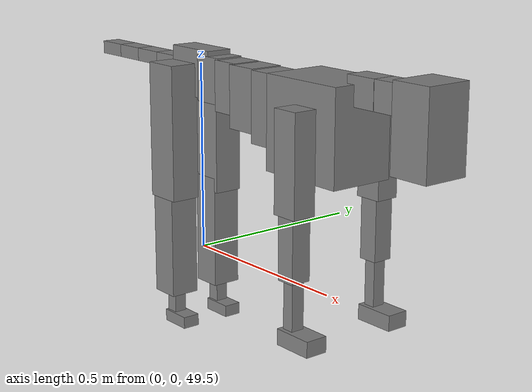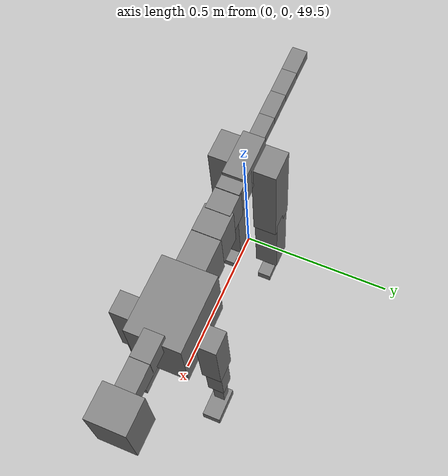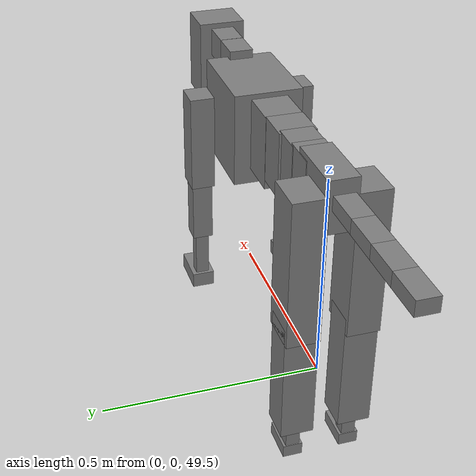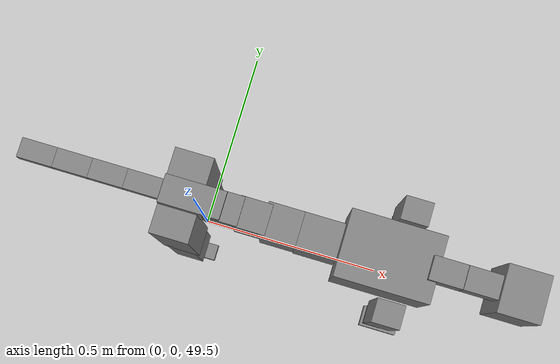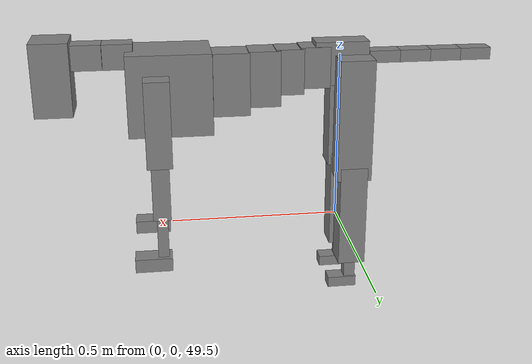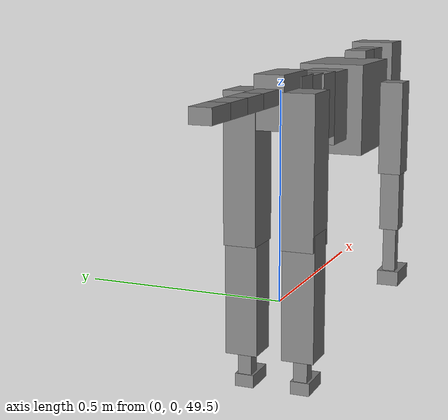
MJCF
<mujoco model="dog">

    <default>
        <joint armature="0.02" stiffness="1" damping="0.2" limited="true"/>
        <geom condim="3" friction="1 0.05 0.05" margin="0.01"/>
        <motor ctrllimited="true" ctrlrange="-1.0 1.0" forcelimited="true" gear="50"/>
    </default>

    <compiler inertiafromgeom="true" angle="radian"/>

    <option timestep="0.016" iterations="50" tolerance="1e-10" solver="Newton" jacobian="dense" cone="pyramidal"/>

    <size nconmax="20000" njmax="60000" nstack="5000000"/>
    <visual>
        <map force="0.1" zfar="30"/>
        <rgba haze="0.15 0.25 0.35 1"/>
        <quality shadowsize="2048"/>
        <global offwidth="800" offheight="800"/>
    </visual>

    <asset>
        <texture type="skybox" builtin="gradient" rgb1="0.3 0.5 0.7" rgb2="0 0 0" width="512" height="512"/>
        <texture name="texplane" type="2d" builtin="checker" rgb1=".2 .3 .4" rgb2=".1 0.15 0.2" width="512" height="512"
                 mark="cross" markrgb=".8 .8 .8"/>
        <texture name="texgeom" type="cube" builtin="flat" mark="cross" width="127" height="1278" rgb1="0.8 0.6 0.4"
                 rgb2="0.8 0.6 0.4" markrgb="1 1 1" random="0.01"/>

        <material name="matplane" reflectance="0.3" texture="texplane" texrepeat="1 1" texuniform="true"/>
        <material name="matgeom" texture="texgeom" texuniform="true" rgba="0.8 0.6 .4 1"/>
    </asset>

    <worldbody>
        <geom name="floor" pos="0 0 0" size="0 0 .25" type="plane" material="matplane" condim="3"/>

        <light directional="false" diffuse=".2 .2 .2" specular="0 0 0" pos="0 0 5" dir="0 0 -1" castshadow="false"/>
        <light mode="targetbodycom" target="torso" directional="false" diffuse=".8 .8 .8" specular="0.3 0.3 0.3"
               pos="0 0 4.0" dir="0 0 -1"/>

        <body name="root" pos="0 0 50">
            <freejoint name="root_1"/>
            <geom type="box" pos="0 0 -0.02" size="0.0774  0.0358  0.063" density="2030"/>

            <body name="spine1" pos="0.054 0 0">
                <joint name="spine1_y" axis="0 1 0" range="0 0.7" limited="true"/>
                <geom type="box" pos="0.02375 0 -0.03" size="0.04375  0.0375  0.05985" density="2030"/>

                <body name="spine2" pos="0.0612 0 0">
                    <joint name="spine2_y" axis="0 1 0" range="-0.15 0.15" limited="true"/>
                    <geom type="box" pos="0.03555  0  -0.04" size="0.04055  0.039  0.06615" density="2030"/>

                    <body name="spine3" pos="0.0730 0 0">
                        <joint name="spine3_y" axis="0 1 0" range="-0.15 0.15" limited="true"/>
                        <geom type="box" pos="0.03555  0  -0.057" size="0.04555  0.0445  0.081" density="2030"/>

                        <body name="spine4" pos="0.0780 0 0">
                            <joint name="spine4_y" axis="0 1 0" range="-0.15 0.15" limited="true"/>
                            <geom type="box" pos="0.05265  0  -0.07" size="0.05265  0.045  0.09135" density="2030"/>

                            <body name="torso" pos="0.1082 0 0">
                                <joint name="torso_y" axis="0 1 0" range="-0.15 0.15" limited="true"/>
                                <geom type="box" pos="0.11925  0  -0.085" size="0.11925  0.085  0.11745"
                                      density="2030"/>

                                <body name="neck1" pos="0.2160  0   0.0180">
                                    <joint name="neck1_y" axis="0 1 0" range="-1.2  -1" limited="true"/>
                                    <geom type="box" pos="0.0423  0  0" size="0.0423  0.03  0.036" density="2325"/>

                                    <body name="neck2" pos="0.0853  0  0">
                                        <joint name="neck2_y" axis="0 1 0" range="0.1  0" limited="true"/>
                                        <geom type="box" pos="0.0423  0  0" size="0.0423  0.03  0.036" density="2325"/>

                                        <body name="head" pos="0.0853  0  0">
                                            <joint name="head_y" axis="0 1 0" range="-0.3  -0.2" limited="true"/>
                                            <geom type="box" pos="0.0531  0  -0.055" size="0.0531  0.06  0.1044"
                                                  density="4030"/>

                                        </body>
                                    </body>
                                </body>

                                <body name="front_shoulder" pos="0.156  0   -0.0480">
                                    <joint name="front_shoulder_y" axis="0 1 0" range="-1 1.5" limited="true"/>
                                    <geom type="box" pos="0 0.13 -0.0972" size="0.0356  0.0304  0.1238" density="1158"/>
                                    <geom type="box" pos="0 -0.13 -0.0972" size="0.0356  0.0304  0.1238"
                                          density="1158"/>

                                    <body name="front_elbow" pos="0  0  -0.1944">
                                        <joint name="front_elbow_y" axis="0 1 0" range="-2 0" limited="true"/>
                                        <geom type="box" pos="0 0.13 -0.0913" size="0.0253  0.0259  0.0913"
                                              density="1081"/>
                                        <geom type="box" pos="0 -0.13 -0.0913" size="0.0253  0.0259  0.0913"
                                              density="1081"/>

                                        <body name="front_wrist" pos="0  0  -0.1826">
                                            <joint name="front_wrist_y" axis="0 1 0" range="-0.2 0" limited="true"/>
                                            <geom type="box" pos="0 0.13 -0.0667" size="0.0155  0.0173  0.0798"
                                                  density="1664"/>
                                            <geom type="box" pos="0 -0.13 -0.0667" size="0.0155  0.0173  0.0798"
                                                  density="1664"/>

                                            <body name="front_finger_end" pos="0  0  -0.1334">
                                                <joint name="front_finger_y" axis="0 1 0" range="-0.4 1"
                                                       limited="true"/>
                                                <geom type="box" pos="0.0290  0.13  -0.0049"
                                                      size="0.0532  0.0290  0.0199" density="1515"/>
                                                <geom type="box" pos="0.0290  -0.13  -0.0049"
                                                      size="0.0532  0.0290  0.0199" density="1515"/>

                                            </body>

                                        </body>
                                    </body>
                                </body>

                            </body>
                        </body>
                    </body>
                </body>
            </body>

            <body name="back_hip" pos="-0.03 0 -0.018">
                <joint name="back_hip_y" axis="0 1 0" range="-1.5 0.3" limited="true"/>
                <geom type="box" pos="0 0.07 -0.1568" size="0.0502  0.0394  0.1796" density="1154"/>
                <geom type="box" pos="0 -0.07 -0.1568" size="0.0502  0.0394  0.1796" density="1154"/>

                <body name="back_knee" pos="0  0  -0.3136">
                    <joint name="back_knee_y" axis="0 1 0" range="0 2.8" limited="true"/>
                    <geom type="box" pos="0 0.07 -0.1366" size="0.0400  0.0394  0.1521" density="1227"/>
                    <geom type="box" pos="0 -0.07 -0.1366" size="0.0400  0.0394  0.1521" density="1227"/>

                    <body name="back_ankle" pos="0  0  -0.2732">
                        <joint name="back_ankle_y" axis="0 1 0" range="-2.2 0" limited="true"/>
                        <geom type="box" pos="0 0.07 -0.0432" size="0.0169  0.0169  0.0545" density="1284"/>
                        <geom type="box" pos="0 -0.07 -0.0432" size="0.0169  0.0169  0.0545" density="1284"/>

                        <body name="back_toe_end" pos="0  0  -0.0865">
                            <joint name="back_toe_y" axis="0 1 0" range="-0.4 1" limited="true"/>
                            <geom type="box" pos="0.0233  0.07  -0.0007" size="0.0427  0.0233  0.0157" density="1515"/>
                            <geom type="box" pos="0.0233  -0.07  -0.0007" size="0.0427  0.0233  0.0157" density="1515"/>

                        </body>
                    </body>
                </body>
            </body>

            <body name="tail1" pos="-0.074 0 -0.006">
                <joint name="tail1_y" axis="0 1 0" range="-0.2 0.2" limited="true"/>
                <geom type="box" pos="-0.0536  0  0" size="0.045  0.025  0.0175" density="1587"/>

                <body name="tail2" pos="-0.09 0 0">
                    <joint name="tail2_y" axis="0 1 0" range="-0.2 0.2" limited="true"/>
                    <geom type="box" pos="-0.0536  0  0" size="0.045  0.025  0.0175" density="1587"/>

                    <body name="tail3" pos="-0.09 0 0">
                        <joint name="tail3_y" axis="0 1 0" range="-0.2 0.2" limited="true"/>
                        <geom type="box" pos="-0.0536  0  0" size="0.045  0.025  0.0175" density="1587"/>

                        <body name="tail4" pos="-0.09 0 0">
                            <joint name="tail4_y" axis="0 1 0" range="-0.2 0.2" limited="true"/>
                            <geom type="box" pos="-0.0536  0  0" size="0.045  0.025  0.0175" density="1587"/>

                        </body>
                    </body>
                </body>
            </body>
        </body>
    </worldbody>

    <actuator>
        <motor joint="spine1_y" forcerange="-150 150     "/>
        <motor joint="spine2_y" forcerange="-150 150     "/>
        <motor joint="spine3_y" forcerange="-150 150     "/>
        <motor joint="spine4_y" forcerange="-150 150     "/>
        <motor joint="torso_y" forcerange="-150 150     "/>
        <motor joint="neck1_y" forcerange="-100 100       "/>
        <motor joint="neck2_y" forcerange="-100 100       "/>
        <motor joint="head_y" forcerange="-150 150       "/>
        <motor joint="front_shoulder_y" forcerange="-135.63 166.94"/>
        <motor joint="front_elbow_y" forcerange="-171.38 117.06"/>
        <motor joint="front_wrist_y" forcerange="-50.60 87.62"/>
        <motor joint="front_finger_y" forcerange="-81.17 33.61"/>
        <motor joint="back_hip_y" forcerange="-325.07 399.79"/>
        <motor joint="back_knee_y" forcerange="-381.66 391.52"/>
        <motor joint="back_angle_y" forcerange="-102.06 67.90"/>
        <motor joint="back_toe_y" forcerange="-63.17 43.36"/>
        <motor joint="tail1_y" forcerange="-50 50     "/>
        <motor joint="tail2_y" forcerange="-50 50     "/>
        <motor joint="tail3_y" forcerange="-50 50     "/>
        <motor joint="tail4_y" forcerange="-50 50     "/>
    </actuator>
</mujoco>
